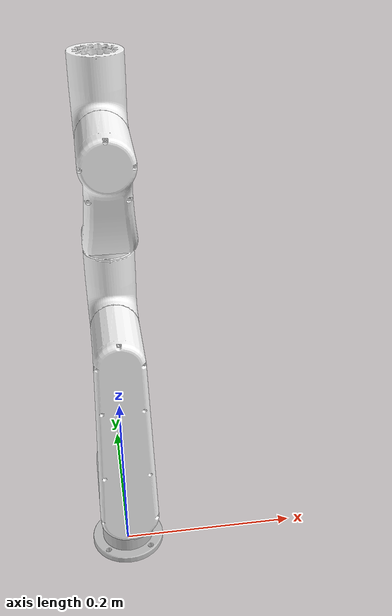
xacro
<?xml version="1.0" encoding="utf-8"?>
<robot
  name="ti5_description">
  <link
    name="base_link">
    <inertial>
      <origin
        xyz="-2.55125090697262E-05 -2.99887234698574E-05 0.0567822085308678"
        rpy="0 0 0" />
      <mass
        value="0.479859182745506" />
      <inertia
        ixx="0.000368236673685098"
        ixy="1.44950782865597E-07"
        ixz="7.30775878924278E-08"
        iyy="0.000368682282310476"
        iyz="-5.31409945922349E-07"
        izz="0.000288202070030983" />
    </inertial>
    <visual>
      <origin
        xyz="0 0 0"
        rpy="0 0 0" />
      <geometry>
        <mesh
          filename="package://dummy_description/meshes/arm/Ti-5/base_link.STL" />
      </geometry>
      <material
        name="">
        <color
          rgba="0.752941176470588 0.752941176470588 0.752941176470588 1" />
      </material>
    </visual>
    <collision>
      <origin
        xyz="0 0 0"
        rpy="0 0 0" />
      <geometry>
        <mesh
          filename="package://dummy_description/meshes/arm/Ti-5/base_link.STL" />
      </geometry>
    </collision>
  </link>
  <link
    name="link1">
    <inertial>
      <origin
        xyz="-8.78811301809214E-07 -0.0303758942389149 0.0317917979822358"
        rpy="0 0 0" />
      <mass
        value="0.179619223671153" />
      <inertia
        ixx="0.000203833527450302"
        ixy="-9.63866472638573E-09"
        ixz="-2.0191954667839E-08"
        iyy="0.000154611695826463"
        iyz="5.0032257174032E-05"
        izz="0.000200287305283539" />
    </inertial>
    <visual>
      <origin
        xyz="0 0 0"
        rpy="0 0 0" />
      <geometry>
        <mesh
          filename="package://dummy_description/meshes/arm/Ti-5/A.STL" />
      </geometry>
      <material
        name="">
        <color
          rgba="1 1 1 1" />
      </material>
    </visual>
    <collision>
      <origin
        xyz="0 0 0"
        rpy="0 0 0" />
      <geometry>
        <mesh
          filename="package://dummy_description/meshes/arm/Ti-5/A.STL" />
      </geometry>
    </collision>
  </link>
  <joint
    name="joint1"
    type="revolute">
    <origin
      xyz="0 0 0.095"
      rpy="0 0 0" />
    <parent
      link="base_link" />
    <child
      link="link1" />
    <axis
      xyz="0 0 1" />
    <limit
      lower="-3.14"
      upper="3.14"
      effort="0"
      velocity="0" />
  </joint>
  <link
    name="link2">
    <inertial>
      <origin
        xyz="-6.10147446306823E-07 -0.00859004707353009 0.102270929184009"
        rpy="0 0 0" />
      <mass
        value="0.241766740141488" />
      <inertia
        ixx="0.0013463411852497"
        ixy="1.70364473595434E-09"
        ixz="1.91056066696219E-08"
        iyy="0.00137447888503465"
        iyz="-0.000111817096603996"
        izz="0.000134066003087332" />
    </inertial>
    <visual>
      <origin
        xyz="0 0 0"
        rpy="0 0 0" />
      <geometry>
        <mesh
          filename="package://dummy_description/meshes/arm/Ti-5/B.STL" />
      </geometry>
      <material
        name="">
        <color
          rgba="1 1 1 1" />
      </material>
    </visual>
    <collision>
      <origin
        xyz="0 0 0"
        rpy="0 0 0" />
      <geometry>
        <mesh
          filename="package://dummy_description/meshes/arm/Ti-5/B.STL" />
      </geometry>
    </collision>
  </link>
  <joint
    name="joint2"
    type="revolute">
    <origin
      xyz="0 -0.0755 0.04"
      rpy="0 0 0" />
    <parent
      link="link1" />
    <child
      link="link2" />
    <axis
      xyz="0 -1 0" />
    <limit
      lower="-4.62"
      upper="1.48"
      effort="0"
      velocity="0" />
  </joint>
  <link
    name="link3">
    <inertial>
      <origin
        xyz="-2.14028914647843E-06 0.0282803031488427 0.0268702514994258"
        rpy="0 0 0" />
      <mass
        value="0.092096460958198" />
      <inertia
        ixx="8.03092124245838E-05"
        ixy="9.60109411600156E-09"
        ixz="-4.40049981751701E-09"
        iyy="7.53660012500824E-05"
        iyz="-2.09608920176471E-05"
        izz="5.5778799394098E-05" />
    </inertial>
    <visual>
      <origin
        xyz="0 0 0"
        rpy="0 0 0" />
      <geometry>
        <mesh
          filename="package://dummy_description/meshes/arm/Ti-5/C.STL" />
      </geometry>
      <material
        name="">
        <color
          rgba="1 1 1 1" />
      </material>
    </visual>
    <collision>
      <origin
        xyz="0 0 0"
        rpy="0 0 0" />
      <geometry>
        <mesh
          filename="package://dummy_description/meshes/arm/Ti-5/C.STL" />
      </geometry>
    </collision>
  </link>
  <joint
    name="joint3"
    type="revolute">
    <origin
      xyz="0 0.0405 0.19"
      rpy="0 0 0" />
    <parent
      link="link2" />
    <child
      link="link3" />
    <axis
      xyz="0 1 0" />
    <limit
      lower="-2.62"
      upper="2.62"
      effort="0"
      velocity="0" />
  </joint>
  <link
    name="link4">
    <inertial>
      <origin
        xyz="-5.96940844193466E-06 -0.0436556294928417 0.0478240088287697"
        rpy="0 0 0" />
      <mass
        value="0.241827211119189" />
      <inertia
        ixx="0.0006420880539358"
        ixy="-5.04625492974642E-09"
        ixz="-1.85896527075764E-09"
        iyy="0.000479097731222028"
        iyz="0.000214763134184144"
        izz="0.000280538676674426" />
    </inertial>
    <visual>
      <origin
        xyz="0 0 0"
        rpy="0 0 0" />
      <geometry>
        <mesh
          filename="package://dummy_description/meshes/arm/Ti-5/D.STL" />
      </geometry>
      <material
        name="">
        <color
          rgba="1 1 1 1" />
      </material>
    </visual>
    <collision>
      <origin
        xyz="0 0 0"
        rpy="0 0 0" />
      <geometry>
        <mesh
          filename="package://dummy_description/meshes/arm/Ti-5/D.STL" />
      </geometry>
    </collision>
  </link>
  <joint
    name="joint4"
    type="revolute">
    <origin
      xyz="0 0.035 0.077363"
      rpy="0 0 0" />
    <parent
      link="link3" />
    <child
      link="link4" />
    <axis
      xyz="0 0 1" />
    <limit
      lower="-3.14"
      upper="3.14"
      effort="0"
      velocity="0" />
  </joint>
  <link
    name="link5">
    <inertial>
      <origin
        xyz="-2.15405061232623E-06 0.0188393864241793 0.0268702473671192"
        rpy="0 0 0" />
      <mass
        value="0.092096513463176" />
      <inertia
        ixx="8.03092496848824E-05"
        ixy="9.61916448944496E-09"
        ixz="-4.42822975241067E-09"
        iyy="7.53660543564142E-05"
        iyz="-2.0960876457579E-05"
        izz="5.57788388645427E-05" />
    </inertial>
    <visual>
      <origin
        xyz="0 0 0"
        rpy="0 0 0" />
      <geometry>
        <mesh
          filename="package://dummy_description/meshes/arm/Ti-5/E.STL" />
      </geometry>
      <material
        name="">
        <color
          rgba="1 1 1 1" />
      </material>
    </visual>
    <collision>
      <origin
        xyz="0 0 0"
        rpy="0 0 0" />
      <geometry>
        <mesh
          filename="package://dummy_description/meshes/arm/Ti-5/E.STL" />
      </geometry>
    </collision>
  </link>
  <joint
    name="joint5"
    type="revolute">
    <origin
      xyz="0 -0.025559 0.11264"
      rpy="0 0 0" />
    <parent
      link="link4" />
    <child
      link="link5" />
    <axis
      xyz="0 1 0" />
    <limit
      lower="-3.05"
      upper="3.05"
      effort="0"
      velocity="0" />
  </joint>

  <link name="virtual_effector"/>

  <joint
    name="joint6"
    type="revolute">
    <origin
      xyz="0 0.025559 0.0685"
      rpy="0 0 0" />
    <parent
      link="link5" />
    <child
      link="virtual_effector" />
    <axis
      xyz="0 0 1" />
    <limit
      lower="-3.05"
      upper="3.05"
      effort="0"
      velocity="0" />
  </joint>
</robot>
